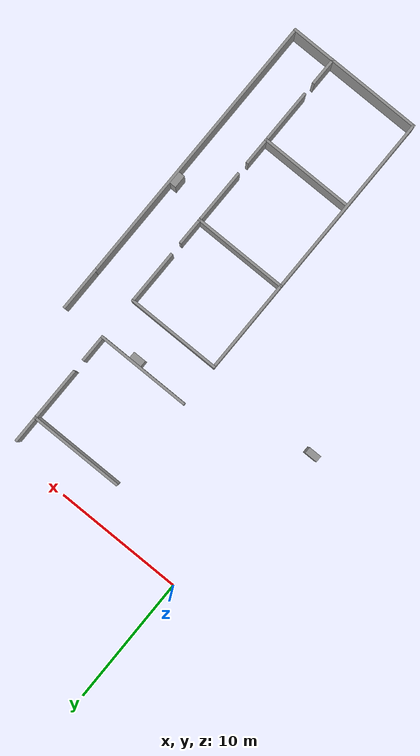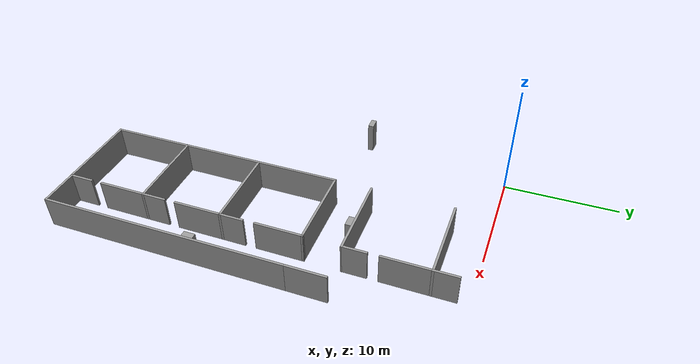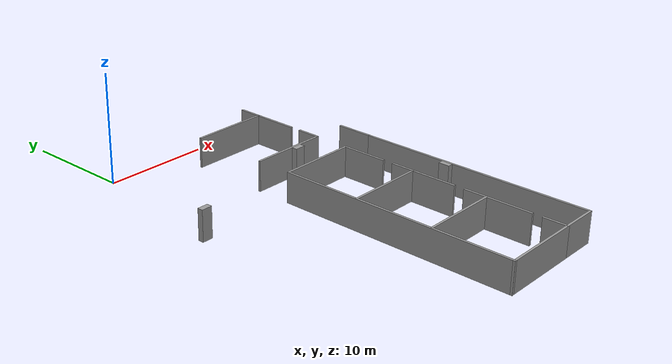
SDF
<sdf version="1.6">
 <world name="default">
  <model name="grey_wall_0_clone_0_0_clone">
   <link name="link">
    <pose>-0.251263 -0.001927 1.4 0 -0 0</pose>
    <inertial>
     <mass>1</mass>
     <inertia><ixx>1</ixx><ixy>0</ixy><ixz>0</ixz><iyy>1</iyy><iyz>0</iyz><izz>1</izz></inertia>
    </inertial>
    <visual name="visual">
     <cast_shadows>0</cast_shadows>
     <geometry><box><size>7.4 0.2 2.8</size></box></geometry>
     <material>
      <script>
       <uri>model://grey_wall/materials/scripts</uri>
       <uri>model://grey_wall/materials/textures</uri>
       <name>vrc/grey_wall</name>
      </script>
      <ambient>1 1 1 1</ambient>
      <diffuse>1 1 1 1</diffuse>
      <specular>0 0 0 1</specular>
      <emissive>0 0 0 1</emissive>
      <shader type="vertex"><normal_map>__default__</normal_map></shader>
     </material>
    </visual>
    <collision name="collision">
     <geometry><box><size>7.4 0.2 2.8</size></box></geometry>
     <surface>
      <friction>
       <ode><mu>1</mu><mu2>1</mu2><fdir1>0 0 0</fdir1><slip1>0</slip1><slip2>0</slip2></ode>
       <torsional>
        <coefficient>1</coefficient>
        <patch_radius>0</patch_radius>
        <surface_radius>0</surface_radius>
        <use_patch_radius>1</use_patch_radius>
        <ode><slip>0</slip></ode>
       </torsional>
      </friction>
      <bounce><restitution_coefficient>0</restitution_coefficient><threshold>1e+06</threshold></bounce>
      <contact>
       <collide_without_contact>0</collide_without_contact>
       <collide_without_contact_bitmask>1</collide_without_contact_bitmask>
       <collide_bitmask>1</collide_bitmask>
       <ode>
        <soft_cfm>0</soft_cfm>
        <soft_erp>0.2</soft_erp>
        <kp>1e+13</kp>
        <kd>1</kd>
        <max_vel>0.01</max_vel>
        <min_depth>0</min_depth>
       </ode>
       <bullet>
        <split_impulse>1</split_impulse>
        <split_impulse_penetration_threshold>-0.01</split_impulse_penetration_threshold>
        <soft_cfm>0</soft_cfm>
        <soft_erp>0.2</soft_erp>
        <kp>1e+13</kp>
        <kd>1</kd>
       </bullet>
      </contact>
     </surface>
    </collision>
   </link>
   <static>1</static>
   <pose>11.3835 -3.1139 0 0 -0 0</pose>
  </model>
  <model name="grey_wall_0_clone_0_0_0">
   <link name="link">
    <pose>-0.251263 -0.001927 1.4 0 -0 0</pose>
    <inertial>
     <mass>1</mass>
     <inertia><ixx>1</ixx><ixy>0</ixy><ixz>0</ixz><iyy>1</iyy><iyz>0</iyz><izz>1</izz></inertia>
    </inertial>
    <visual name="visual">
     <cast_shadows>0</cast_shadows>
     <geometry><box><size>7.4 0.2 2.8</size></box></geometry>
     <material>
      <script>
       <uri>model://grey_wall/materials/scripts</uri>
       <uri>model://grey_wall/materials/textures</uri>
       <name>vrc/grey_wall</name>
      </script>
      <ambient>1 1 1 1</ambient>
      <diffuse>1 1 1 1</diffuse>
      <specular>0 0 0 1</specular>
      <emissive>0 0 0 1</emissive>
      <shader type="vertex"><normal_map>__default__</normal_map></shader>
     </material>
    </visual>
    <collision name="collision">
     <geometry><box><size>7.4 0.2 2.8</size></box></geometry>
     <surface>
      <friction>
       <ode><mu>1</mu><mu2>1</mu2><fdir1>0 0 0</fdir1><slip1>0</slip1><slip2>0</slip2></ode>
       <torsional>
        <coefficient>1</coefficient>
        <patch_radius>0</patch_radius>
        <surface_radius>0</surface_radius>
        <use_patch_radius>1</use_patch_radius>
        <ode><slip>0</slip></ode>
       </torsional>
      </friction>
      <bounce><restitution_coefficient>0</restitution_coefficient><threshold>1e+06</threshold></bounce>
      <contact>
       <collide_without_contact>0</collide_without_contact>
       <collide_without_contact_bitmask>1</collide_without_contact_bitmask>
       <collide_bitmask>1</collide_bitmask>
       <ode>
        <soft_cfm>0</soft_cfm>
        <soft_erp>0.2</soft_erp>
        <kp>1e+13</kp>
        <kd>1</kd>
        <max_vel>0.01</max_vel>
        <min_depth>0</min_depth>
       </ode>
       <bullet>
        <split_impulse>1</split_impulse>
        <split_impulse_penetration_threshold>-0.01</split_impulse_penetration_threshold>
        <soft_cfm>0</soft_cfm>
        <soft_erp>0.2</soft_erp>
        <kp>1e+13</kp>
        <kd>1</kd>
       </bullet>
      </contact>
     </surface>
    </collision>
   </link>
   <static>1</static>
   <pose>11.347 -10.3243 0 0 -0 0</pose>
  </model>
  <model name="g2_clone_0_0_clone_clone_clone_clone_clone">
   <link name="link">
    <pose>0 0 1.4 0 -0 0</pose>
    <inertial>
     <mass>1</mass>
     <inertia><ixx>1</ixx><ixy>0</ixy><ixz>0</ixz><iyy>1</iyy><iyz>0</iyz><izz>1</izz></inertia>
    </inertial>
    <visual name="visual">
     <cast_shadows>0</cast_shadows>
     <geometry><box><size>21.8 0.2 2.8</size></box></geometry>
     <material>
      <script>
       <uri>model://grey_wall/materials/scripts</uri>
       <uri>model://grey_wall/materials/textures</uri>
       <name>vrc/grey_wall</name>
      </script>
      <ambient>1 1 1 1</ambient>
      <diffuse>1 1 1 1</diffuse>
      <specular>0 0 0 1</specular>
      <emissive>0 0 0 1</emissive>
      <shader type="vertex"><normal_map>__default__</normal_map></shader>
     </material>
    </visual>
    <collision name="collision">
     <geometry><box><size>21.8 0.2 2.8</size></box></geometry>
     <surface>
      <friction>
       <ode><mu>1</mu><mu2>1</mu2><fdir1>0 0 0</fdir1><slip1>0</slip1><slip2>0</slip2></ode>
       <torsional>
        <coefficient>1</coefficient>
        <patch_radius>0</patch_radius>
        <surface_radius>0</surface_radius>
        <use_patch_radius>1</use_patch_radius>
        <ode><slip>0</slip></ode>
       </torsional>
      </friction>
      <bounce><restitution_coefficient>0</restitution_coefficient><threshold>1e+06</threshold></bounce>
      <contact>
       <collide_without_contact>0</collide_without_contact>
       <collide_without_contact_bitmask>1</collide_without_contact_bitmask>
       <collide_bitmask>1</collide_bitmask>
       <ode>
        <soft_cfm>0</soft_cfm>
        <soft_erp>0.2</soft_erp>
        <kp>1e+13</kp>
        <kd>1</kd>
        <max_vel>0.01</max_vel>
        <min_depth>0</min_depth>
       </ode>
       <bullet>
        <split_impulse>1</split_impulse>
        <split_impulse_penetration_threshold>-0.01</split_impulse_penetration_threshold>
        <soft_cfm>0</soft_cfm>
        <soft_erp>0.2</soft_erp>
        <kp>1e+13</kp>
        <kd>1</kd>
       </bullet>
      </contact>
     </surface>
    </collision>
   </link>
   <static>1</static>
   <pose>17.9374 -24.4027 0 0 0 -1.57584</pose>
  </model>
  <model name="g3_clone_clone_0_clone_0_0_0_0_0_0_clone_clone_clone_0_clone_0_clone_1_0_clone_1">
   <link name="link">
    <pose>0.277892 -0.062462 1.4 0 -0 0</pose>
    <inertial>
     <mass>1</mass>
     <inertia><ixx>1</ixx><ixy>0</ixy><ixz>0</ixz><iyy>1</iyy><iyz>0</iyz><izz>1</izz></inertia>
    </inertial>
    <visual name="visual">
     <cast_shadows>0</cast_shadows>
     <geometry><box><size>2.2 0.2 2.8</size></box></geometry>
     <material>
      <script>
       <uri>model://grey_wall/materials/scripts</uri>
       <uri>model://grey_wall/materials/textures</uri>
       <name>vrc/grey_wall</name>
      </script>
      <ambient>1 1 1 1</ambient>
      <diffuse>1 1 1 1</diffuse>
      <specular>0 0 0 1</specular>
      <emissive>0 0 0 1</emissive>
      <shader type="vertex"><normal_map>__default__</normal_map></shader>
     </material>
    </visual>
    <collision name="collision">
     <geometry><box><size>2.2 0.2 2.8</size></box></geometry>
     <surface>
      <friction>
       <ode><mu>1</mu><mu2>1</mu2><fdir1>0 0 0</fdir1><slip1>0</slip1><slip2>0</slip2></ode>
       <torsional>
        <coefficient>1</coefficient>
        <patch_radius>0</patch_radius>
        <surface_radius>0</surface_radius>
        <use_patch_radius>1</use_patch_radius>
        <ode><slip>0</slip></ode>
       </torsional>
      </friction>
      <bounce><restitution_coefficient>0</restitution_coefficient><threshold>1e+06</threshold></bounce>
      <contact>
       <collide_without_contact>0</collide_without_contact>
       <collide_without_contact_bitmask>1</collide_without_contact_bitmask>
       <collide_bitmask>1</collide_bitmask>
       <ode>
        <soft_cfm>0</soft_cfm>
        <soft_erp>0.2</soft_erp>
        <kp>1e+13</kp>
        <kd>1</kd>
        <max_vel>0.01</max_vel>
        <min_depth>0</min_depth>
       </ode>
       <bullet>
        <split_impulse>1</split_impulse>
        <split_impulse_penetration_threshold>-0.01</split_impulse_penetration_threshold>
        <soft_cfm>0</soft_cfm>
        <soft_erp>0.2</soft_erp>
        <kp>1e+13</kp>
        <kd>1</kd>
       </bullet>
      </contact>
     </surface>
    </collision>
   </link>
   <static>1</static>
   <pose>14.7998 -1.84031 0 0 0 -1.57614</pose>
  </model>
  <model name="g3_clone_clone_0_0_0_0_0_clone_0_clone_0_clone_2_clone_0_clone_0_clone_0_clone_clone">
   <link name="link">
    <pose>0.7232 0.251992 1.4 0 -0 0</pose>
    <inertial>
     <mass>1</mass>
     <inertia><ixx>1</ixx><ixy>0</ixy><ixz>0</ixz><iyy>1</iyy><iyz>0</iyz><izz>1</izz></inertia>
    </inertial>
    <visual name="visual">
     <cast_shadows>0</cast_shadows>
     <geometry><box><size>4.3 0.2 2.8</size></box></geometry>
     <material>
      <script>
       <uri>model://grey_wall/materials/scripts</uri>
       <uri>model://grey_wall/materials/textures</uri>
       <name>vrc/grey_wall</name>
      </script>
      <ambient>1 1 1 1</ambient>
      <diffuse>1 1 1 1</diffuse>
      <specular>0 0 0 1</specular>
      <emissive>0 0 0 1</emissive>
      <shader type="vertex"><normal_map>__default__</normal_map></shader>
     </material>
    </visual>
    <collision name="collision">
     <geometry><box><size>4.3 0.2 2.8</size></box></geometry>
     <surface>
      <friction>
       <ode><mu>1</mu><mu2>1</mu2><fdir1>0 0 0</fdir1><slip1>0</slip1><slip2>0</slip2></ode>
       <torsional>
        <coefficient>1</coefficient>
        <patch_radius>0</patch_radius>
        <surface_radius>0</surface_radius>
        <use_patch_radius>1</use_patch_radius>
        <ode><slip>0</slip></ode>
       </torsional>
      </friction>
      <bounce><restitution_coefficient>0</restitution_coefficient><threshold>1e+06</threshold></bounce>
      <contact>
       <collide_without_contact>0</collide_without_contact>
       <collide_without_contact_bitmask>1</collide_without_contact_bitmask>
       <collide_bitmask>1</collide_bitmask>
       <ode>
        <soft_cfm>0</soft_cfm>
        <soft_erp>0.2</soft_erp>
        <kp>1e+13</kp>
        <kd>1</kd>
        <max_vel>0.01</max_vel>
        <min_depth>0</min_depth>
       </ode>
       <bullet>
        <split_impulse>1</split_impulse>
        <split_impulse_penetration_threshold>-0.01</split_impulse_penetration_threshold>
        <soft_cfm>0</soft_cfm>
        <soft_erp>0.2</soft_erp>
        <kp>1e+13</kp>
        <kd>1</kd>
       </bullet>
      </contact>
     </surface>
    </collision>
   </link>
   <static>1</static>
   <pose>14.4689 -4.43983 0 0 0 -1.57728</pose>
  </model>
  <model name="g3_clone_clone_0_clone_0_0_0_0_0_0_clone_clone_clone_0_clone_0_clone_1_0_clone_1_clone">
   <link name="link">
    <pose>0.277892 -0.062462 1.4 0 -0 0</pose>
    <inertial>
     <mass>1</mass>
     <inertia><ixx>1</ixx><ixy>0</ixy><ixz>0</ixz><iyy>1</iyy><iyz>0</iyz><izz>1</izz></inertia>
    </inertial>
    <visual name="visual">
     <cast_shadows>0</cast_shadows>
     <geometry><box><size>2.2 0.2 2.8</size></box></geometry>
     <material>
      <script>
       <uri>model://grey_wall/materials/scripts</uri>
       <uri>model://grey_wall/materials/textures</uri>
       <name>vrc/grey_wall</name>
      </script>
      <ambient>1 1 1 1</ambient>
      <diffuse>1 1 1 1</diffuse>
      <specular>0 0 0 1</specular>
      <emissive>0 0 0 1</emissive>
      <shader type="vertex"><normal_map>__default__</normal_map></shader>
     </material>
    </visual>
    <collision name="collision">
     <geometry><box><size>2.2 0.2 2.8</size></box></geometry>
     <surface>
      <friction>
       <ode><mu>1</mu><mu2>1</mu2><fdir1>0 0 0</fdir1><slip1>0</slip1><slip2>0</slip2></ode>
       <torsional>
        <coefficient>1</coefficient>
        <patch_radius>0</patch_radius>
        <surface_radius>0</surface_radius>
        <use_patch_radius>1</use_patch_radius>
        <ode><slip>0</slip></ode>
       </torsional>
      </friction>
      <bounce><restitution_coefficient>0</restitution_coefficient><threshold>1e+06</threshold></bounce>
      <contact>
       <collide_without_contact>0</collide_without_contact>
       <collide_without_contact_bitmask>1</collide_without_contact_bitmask>
       <collide_bitmask>1</collide_bitmask>
       <ode>
        <soft_cfm>0</soft_cfm>
        <soft_erp>0.2</soft_erp>
        <kp>1e+13</kp>
        <kd>1</kd>
        <max_vel>0.01</max_vel>
        <min_depth>0</min_depth>
       </ode>
       <bullet>
        <split_impulse>1</split_impulse>
        <split_impulse_penetration_threshold>-0.01</split_impulse_penetration_threshold>
        <soft_cfm>0</soft_cfm>
        <soft_erp>0.2</soft_erp>
        <kp>1e+13</kp>
        <kd>1</kd>
       </bullet>
      </contact>
     </surface>
    </collision>
   </link>
   <static>1</static>
   <pose>14.765 -9.04614 0 0 0 -1.57614</pose>
  </model>
  <model name="g2_clone_0_0_0_clone_0">
   <link name="link">
    <pose>0 0 1.4 0 -0 0</pose>
    <inertial>
     <mass>1</mass>
     <inertia><ixx>1</ixx><ixy>0</ixy><ixz>0</ixz><iyy>1</iyy><iyz>0</iyz><izz>1</izz></inertia>
    </inertial>
    <visual name="visual">
     <cast_shadows>0</cast_shadows>
     <geometry><box><size>21.8 0.2 2.8</size></box></geometry>
     <material>
      <script>
       <uri>model://grey_wall/materials/scripts</uri>
       <uri>model://grey_wall/materials/textures</uri>
       <name>vrc/grey_wall</name>
      </script>
      <ambient>1 1 1 1</ambient>
      <diffuse>1 1 1 1</diffuse>
      <specular>0 0 0 1</specular>
      <emissive>0 0 0 1</emissive>
      <shader type="vertex"><normal_map>__default__</normal_map></shader>
     </material>
    </visual>
    <collision name="collision">
     <geometry><box><size>21.8 0.2 2.8</size></box></geometry>
     <surface>
      <friction>
       <ode><mu>1</mu><mu2>1</mu2><fdir1>0 0 0</fdir1><slip1>0</slip1><slip2>0</slip2></ode>
       <torsional>
        <coefficient>1</coefficient>
        <patch_radius>0</patch_radius>
        <surface_radius>0</surface_radius>
        <use_patch_radius>1</use_patch_radius>
        <ode><slip>0</slip></ode>
       </torsional>
      </friction>
      <bounce><restitution_coefficient>0</restitution_coefficient><threshold>1e+06</threshold></bounce>
      <contact>
       <collide_without_contact>0</collide_without_contact>
       <collide_without_contact_bitmask>1</collide_without_contact_bitmask>
       <collide_bitmask>1</collide_bitmask>
       <ode>
        <soft_cfm>0</soft_cfm>
        <soft_erp>0.2</soft_erp>
        <kp>1e+13</kp>
        <kd>1</kd>
        <max_vel>0.01</max_vel>
        <min_depth>0</min_depth>
       </ode>
       <bullet>
        <split_impulse>1</split_impulse>
        <split_impulse_penetration_threshold>-0.01</split_impulse_penetration_threshold>
        <soft_cfm>0</soft_cfm>
        <soft_erp>0.2</soft_erp>
        <kp>1e+13</kp>
        <kd>1</kd>
       </bullet>
      </contact>
     </surface>
    </collision>
   </link>
   <static>1</static>
   <pose>7.41233 -24.4149 0 0 0 -1.57584</pose>
  </model>
  <model name="grey_wall_0_clone_0_0_clone_clone_0_0">
   <link name="link">
    <pose>-2.47487 -23.0664 1.4 0 -0 0</pose>
    <inertial>
     <mass>1</mass>
     <inertia><ixx>1</ixx><ixy>0</ixy><ixz>0</ixz><iyy>1</iyy><iyz>0</iyz><izz>1</izz></inertia>
    </inertial>
    <visual name="visual">
     <cast_shadows>0</cast_shadows>
     <geometry><box><size>3.5 0.2 2.8</size></box></geometry>
     <material>
      <script>
       <uri>model://grey_wall/materials/scripts</uri>
       <uri>model://grey_wall/materials/textures</uri>
       <name>vrc/grey_wall</name>
      </script>
      <ambient>1 1 1 1</ambient>
      <diffuse>1 1 1 1</diffuse>
      <specular>0 0 0 1</specular>
      <emissive>0 0 0 1</emissive>
      <shader type="vertex"><normal_map>__default__</normal_map></shader>
     </material>
    </visual>
    <collision name="collision">
     <geometry><box><size>3.5 0.2 2.8</size></box></geometry>
     <surface>
      <friction>
       <ode><mu>1</mu><mu2>1</mu2><fdir1>0 0 0</fdir1><slip1>0</slip1><slip2>0</slip2></ode>
       <torsional>
        <coefficient>1</coefficient>
        <patch_radius>0</patch_radius>
        <surface_radius>0</surface_radius>
        <use_patch_radius>1</use_patch_radius>
        <ode><slip>0</slip></ode>
       </torsional>
      </friction>
      <bounce><restitution_coefficient>0</restitution_coefficient><threshold>1e+06</threshold></bounce>
      <contact>
       <collide_without_contact>0</collide_without_contact>
       <collide_without_contact_bitmask>1</collide_without_contact_bitmask>
       <collide_bitmask>1</collide_bitmask>
       <ode>
        <soft_cfm>0</soft_cfm>
        <soft_erp>0.2</soft_erp>
        <kp>1e+13</kp>
        <kd>1</kd>
        <max_vel>0.01</max_vel>
        <min_depth>0</min_depth>
       </ode>
       <bullet>
        <split_impulse>1</split_impulse>
        <split_impulse_penetration_threshold>-0.01</split_impulse_penetration_threshold>
        <soft_cfm>0</soft_cfm>
        <soft_erp>0.2</soft_erp>
        <kp>1e+13</kp>
        <kd>1</kd>
       </bullet>
      </contact>
     </surface>
    </collision>
   </link>
   <static>1</static>
   <pose>18.7007 -12.1369 0 0 -0 0</pose>
  </model>
  <model name="g3_clone_clone_0_clone_0_0_0_0_0_0_clone_clone_clone_0_clone_0_clone_1_0_clone_1_clone_clone_0">
   <link name="link">
    <pose>0.277892 -0.022853 1.4 0 -0 0</pose>
    <inertial>
     <mass>1</mass>
     <inertia><ixx>1</ixx><ixy>0</ixy><ixz>0</ixz><iyy>1</iyy><iyz>0</iyz><izz>1</izz></inertia>
    </inertial>
    <visual name="visual">
     <cast_shadows>0</cast_shadows>
     <geometry><box><size>3.5 0.2 2.8</size></box></geometry>
     <material>
      <script>
       <uri>model://grey_wall/materials/scripts</uri>
       <uri>model://grey_wall/materials/textures</uri>
       <name>vrc/grey_wall</name>
      </script>
      <ambient>1 1 1 1</ambient>
      <diffuse>1 1 1 1</diffuse>
      <specular>0 0 0 1</specular>
      <emissive>0 0 0 1</emissive>
      <shader type="vertex"><normal_map>__default__</normal_map></shader>
     </material>
    </visual>
    <collision name="collision">
     <geometry><box><size>3.5 0.2 2.8</size></box></geometry>
     <surface>
      <friction>
       <ode><mu>1</mu><mu2>1</mu2><fdir1>0 0 0</fdir1><slip1>0</slip1><slip2>0</slip2></ode>
       <torsional>
        <coefficient>1</coefficient>
        <patch_radius>0</patch_radius>
        <surface_radius>0</surface_radius>
        <use_patch_radius>1</use_patch_radius>
        <ode><slip>0</slip></ode>
       </torsional>
      </friction>
      <bounce><restitution_coefficient>0</restitution_coefficient><threshold>1e+06</threshold></bounce>
      <contact>
       <collide_without_contact>0</collide_without_contact>
       <collide_without_contact_bitmask>1</collide_without_contact_bitmask>
       <collide_bitmask>1</collide_bitmask>
       <ode>
        <soft_cfm>0</soft_cfm>
        <soft_erp>0.2</soft_erp>
        <kp>1e+13</kp>
        <kd>1</kd>
        <max_vel>0.01</max_vel>
        <min_depth>0</min_depth>
       </ode>
       <bullet>
        <split_impulse>1</split_impulse>
        <split_impulse_penetration_threshold>-0.01</split_impulse_penetration_threshold>
        <soft_cfm>0</soft_cfm>
        <soft_erp>0.2</soft_erp>
        <kp>1e+13</kp>
        <kd>1</kd>
       </bullet>
      </contact>
     </surface>
    </collision>
   </link>
   <static>1</static>
   <pose>18.0265 -11.6602 0 0 0 -1.57614</pose>
  </model>
  <model name="grey_wall_0_clone_0_0_0_clone">
   <link name="link">
    <pose>-0.251263 -0.001927 1.4 0 -0 0</pose>
    <inertial>
     <mass>1</mass>
     <inertia><ixx>1</ixx><ixy>0</ixy><ixz>0</ixz><iyy>1</iyy><iyz>0</iyz><izz>1</izz></inertia>
    </inertial>
    <visual name="visual">
     <cast_shadows>0</cast_shadows>
     <geometry><box><size>7.4 0.2 2.8</size></box></geometry>
     <material>
      <script>
       <uri>model://grey_wall/materials/scripts</uri>
       <uri>model://grey_wall/materials/textures</uri>
       <name>vrc/grey_wall</name>
      </script>
      <ambient>1 1 1 1</ambient>
      <diffuse>1 1 1 1</diffuse>
      <specular>0 0 0 1</specular>
      <emissive>0 0 0 1</emissive>
      <shader type="vertex"><normal_map>__default__</normal_map></shader>
     </material>
    </visual>
    <collision name="collision">
     <geometry><box><size>7.4 0.2 2.8</size></box></geometry>
     <surface>
      <friction>
       <ode><mu>1</mu><mu2>1</mu2><fdir1>0 0 0</fdir1><slip1>0</slip1><slip2>0</slip2></ode>
       <torsional>
        <coefficient>1</coefficient>
        <patch_radius>0</patch_radius>
        <surface_radius>0</surface_radius>
        <use_patch_radius>1</use_patch_radius>
        <ode><slip>0</slip></ode>
       </torsional>
      </friction>
      <bounce><restitution_coefficient>0</restitution_coefficient><threshold>1e+06</threshold></bounce>
      <contact>
       <collide_without_contact>0</collide_without_contact>
       <collide_without_contact_bitmask>1</collide_without_contact_bitmask>
       <collide_bitmask>1</collide_bitmask>
       <ode>
        <soft_cfm>0</soft_cfm>
        <soft_erp>0.2</soft_erp>
        <kp>1e+13</kp>
        <kd>1</kd>
        <max_vel>0.01</max_vel>
        <min_depth>0</min_depth>
       </ode>
       <bullet>
        <split_impulse>1</split_impulse>
        <split_impulse_penetration_threshold>-0.01</split_impulse_penetration_threshold>
        <soft_cfm>0</soft_cfm>
        <soft_erp>0.2</soft_erp>
        <kp>1e+13</kp>
        <kd>1</kd>
       </bullet>
      </contact>
     </surface>
    </collision>
   </link>
   <static>1</static>
   <pose>11.3191 -13.6071 0 0 -0 0</pose>
  </model>
  <model name="grey_wall_0_clone_0_0_0_clone_clone">
   <link name="link">
    <pose>-0.251263 -0.001927 1.4 0 -0 0</pose>
    <inertial>
     <mass>1</mass>
     <inertia><ixx>1</ixx><ixy>0</ixy><ixz>0</ixz><iyy>1</iyy><iyz>0</iyz><izz>1</izz></inertia>
    </inertial>
    <visual name="visual">
     <cast_shadows>0</cast_shadows>
     <geometry><box><size>7.4 0.2 2.8</size></box></geometry>
     <material>
      <script>
       <uri>model://grey_wall/materials/scripts</uri>
       <uri>model://grey_wall/materials/textures</uri>
       <name>vrc/grey_wall</name>
      </script>
      <ambient>1 1 1 1</ambient>
      <diffuse>1 1 1 1</diffuse>
      <specular>0 0 0 1</specular>
      <emissive>0 0 0 1</emissive>
      <shader type="vertex"><normal_map>__default__</normal_map></shader>
     </material>
    </visual>
    <collision name="collision">
     <geometry><box><size>7.4 0.2 2.8</size></box></geometry>
     <surface>
      <friction>
       <ode><mu>1</mu><mu2>1</mu2><fdir1>0 0 0</fdir1><slip1>0</slip1><slip2>0</slip2></ode>
       <torsional>
        <coefficient>1</coefficient>
        <patch_radius>0</patch_radius>
        <surface_radius>0</surface_radius>
        <use_patch_radius>1</use_patch_radius>
        <ode><slip>0</slip></ode>
       </torsional>
      </friction>
      <bounce><restitution_coefficient>0</restitution_coefficient><threshold>1e+06</threshold></bounce>
      <contact>
       <collide_without_contact>0</collide_without_contact>
       <collide_without_contact_bitmask>1</collide_without_contact_bitmask>
       <collide_bitmask>1</collide_bitmask>
       <ode>
        <soft_cfm>0</soft_cfm>
        <soft_erp>0.2</soft_erp>
        <kp>1e+13</kp>
        <kd>1</kd>
        <max_vel>0.01</max_vel>
        <min_depth>0</min_depth>
       </ode>
       <bullet>
        <split_impulse>1</split_impulse>
        <split_impulse_penetration_threshold>-0.01</split_impulse_penetration_threshold>
        <soft_cfm>0</soft_cfm>
        <soft_erp>0.2</soft_erp>
        <kp>1e+13</kp>
        <kd>1</kd>
       </bullet>
      </contact>
     </surface>
    </collision>
   </link>
   <static>1</static>
   <pose>11.294 -20.8222 0 0 -0 0</pose>
  </model>
  <model name="grey_wall_0_clone_0_0_0_clone_clone_0">
   <link name="link">
    <pose>-0.251263 -0.001927 1.4 0 -0 0</pose>
    <inertial>
     <mass>1</mass>
     <inertia><ixx>1</ixx><ixy>0</ixy><ixz>0</ixz><iyy>1</iyy><iyz>0</iyz><izz>1</izz></inertia>
    </inertial>
    <visual name="visual">
     <cast_shadows>0</cast_shadows>
     <geometry><box><size>7.4 0.2 2.8</size></box></geometry>
     <material>
      <script>
       <uri>model://grey_wall/materials/scripts</uri>
       <uri>model://grey_wall/materials/textures</uri>
       <name>vrc/grey_wall</name>
      </script>
      <ambient>1 1 1 1</ambient>
      <diffuse>1 1 1 1</diffuse>
      <specular>0 0 0 1</specular>
      <emissive>0 0 0 1</emissive>
      <shader type="vertex"><normal_map>__default__</normal_map></shader>
     </material>
    </visual>
    <collision name="collision">
     <geometry><box><size>7.4 0.2 2.8</size></box></geometry>
     <surface>
      <friction>
       <ode><mu>1</mu><mu2>1</mu2><fdir1>0 0 0</fdir1><slip1>0</slip1><slip2>0</slip2></ode>
       <torsional>
        <coefficient>1</coefficient>
        <patch_radius>0</patch_radius>
        <surface_radius>0</surface_radius>
        <use_patch_radius>1</use_patch_radius>
        <ode><slip>0</slip></ode>
       </torsional>
      </friction>
      <bounce><restitution_coefficient>0</restitution_coefficient><threshold>1e+06</threshold></bounce>
      <contact>
       <collide_without_contact>0</collide_without_contact>
       <collide_without_contact_bitmask>1</collide_without_contact_bitmask>
       <collide_bitmask>1</collide_bitmask>
       <ode>
        <soft_cfm>0</soft_cfm>
        <soft_erp>0.2</soft_erp>
        <kp>1e+13</kp>
        <kd>1</kd>
        <max_vel>0.01</max_vel>
        <min_depth>0</min_depth>
       </ode>
       <bullet>
        <split_impulse>1</split_impulse>
        <split_impulse_penetration_threshold>-0.01</split_impulse_penetration_threshold>
        <soft_cfm>0</soft_cfm>
        <soft_erp>0.2</soft_erp>
        <kp>1e+13</kp>
        <kd>1</kd>
       </bullet>
      </contact>
     </surface>
    </collision>
   </link>
   <static>1</static>
   <pose>11.2516 -28.0234 0 0 -0 0</pose>
  </model>
  <model name="g3_clone_clone_0_0_0_0_0_clone_0_clone_0_clone_2_clone_0_clone_0_clone_0_clone_clone_clone">
   <link name="link">
    <pose>0.7232 0.251992 1.4 0 -0 0</pose>
    <inertial>
     <mass>1</mass>
     <inertia><ixx>1</ixx><ixy>0</ixy><ixz>0</ixz><iyy>1</iyy><iyz>0</iyz><izz>1</izz></inertia>
    </inertial>
    <visual name="visual">
     <cast_shadows>0</cast_shadows>
     <geometry><box><size>4.3 0.2 2.8</size></box></geometry>
     <material>
      <script>
       <uri>model://grey_wall/materials/scripts</uri>
       <uri>model://grey_wall/materials/textures</uri>
       <name>vrc/grey_wall</name>
      </script>
      <ambient>1 1 1 1</ambient>
      <diffuse>1 1 1 1</diffuse>
      <specular>0 0 0 1</specular>
      <emissive>0 0 0 1</emissive>
      <shader type="vertex"><normal_map>__default__</normal_map></shader>
     </material>
    </visual>
    <collision name="collision">
     <geometry><box><size>4.3 0.2 2.8</size></box></geometry>
     <surface>
      <friction>
       <ode><mu>1</mu><mu2>1</mu2><fdir1>0 0 0</fdir1><slip1>0</slip1><slip2>0</slip2></ode>
       <torsional>
        <coefficient>1</coefficient>
        <patch_radius>0</patch_radius>
        <surface_radius>0</surface_radius>
        <use_patch_radius>1</use_patch_radius>
        <ode><slip>0</slip></ode>
       </torsional>
      </friction>
      <bounce><restitution_coefficient>0</restitution_coefficient><threshold>1e+06</threshold></bounce>
      <contact>
       <collide_without_contact>0</collide_without_contact>
       <collide_without_contact_bitmask>1</collide_without_contact_bitmask>
       <collide_bitmask>1</collide_bitmask>
       <ode>
        <soft_cfm>0</soft_cfm>
        <soft_erp>0.2</soft_erp>
        <kp>1e+13</kp>
        <kd>1</kd>
        <max_vel>0.01</max_vel>
        <min_depth>0</min_depth>
       </ode>
       <bullet>
        <split_impulse>1</split_impulse>
        <split_impulse_penetration_threshold>-0.01</split_impulse_penetration_threshold>
        <soft_cfm>0</soft_cfm>
        <soft_erp>0.2</soft_erp>
        <kp>1e+13</kp>
        <kd>1</kd>
       </bullet>
      </contact>
     </surface>
    </collision>
   </link>
   <static>1</static>
   <pose>14.4068 -14.9327 0 0 0 -1.57728</pose>
  </model>
  <model name="g3_clone_clone_0_clone_0_0_0_0_0_0_clone_clone_clone_0_clone_0_clone_1_0_clone_1_clone_clone_1">
   <link name="link">
    <pose>0.277892 -0.062462 1.4 0 -0 0</pose>
    <inertial>
     <mass>1</mass>
     <inertia><ixx>1</ixx><ixy>0</ixy><ixz>0</ixz><iyy>1</iyy><iyz>0</iyz><izz>1</izz></inertia>
    </inertial>
    <visual name="visual">
     <cast_shadows>0</cast_shadows>
     <geometry><box><size>2.2 0.2 2.8</size></box></geometry>
     <material>
      <script>
       <uri>model://grey_wall/materials/scripts</uri>
       <uri>model://grey_wall/materials/textures</uri>
       <name>vrc/grey_wall</name>
      </script>
      <ambient>1 1 1 1</ambient>
      <diffuse>1 1 1 1</diffuse>
      <specular>0 0 0 1</specular>
      <emissive>0 0 0 1</emissive>
      <shader type="vertex"><normal_map>__default__</normal_map></shader>
     </material>
    </visual>
    <collision name="collision">
     <geometry><box><size>2.2 0.2 2.8</size></box></geometry>
     <surface>
      <friction>
       <ode><mu>1</mu><mu2>1</mu2><fdir1>0 0 0</fdir1><slip1>0</slip1><slip2>0</slip2></ode>
       <torsional>
        <coefficient>1</coefficient>
        <patch_radius>0</patch_radius>
        <surface_radius>0</surface_radius>
        <use_patch_radius>1</use_patch_radius>
        <ode><slip>0</slip></ode>
       </torsional>
      </friction>
      <bounce><restitution_coefficient>0</restitution_coefficient><threshold>1e+06</threshold></bounce>
      <contact>
       <collide_without_contact>0</collide_without_contact>
       <collide_without_contact_bitmask>1</collide_without_contact_bitmask>
       <collide_bitmask>1</collide_bitmask>
       <ode>
        <soft_cfm>0</soft_cfm>
        <soft_erp>0.2</soft_erp>
        <kp>1e+13</kp>
        <kd>1</kd>
        <max_vel>0.01</max_vel>
        <min_depth>0</min_depth>
       </ode>
       <bullet>
        <split_impulse>1</split_impulse>
        <split_impulse_penetration_threshold>-0.01</split_impulse_penetration_threshold>
        <soft_cfm>0</soft_cfm>
        <soft_erp>0.2</soft_erp>
        <kp>1e+13</kp>
        <kd>1</kd>
       </bullet>
      </contact>
     </surface>
    </collision>
   </link>
   <static>1</static>
   <pose>14.7109 -19.5453 0 0 0 -1.57614</pose>
  </model>
  <model name="g3_clone_clone_0_0_0_0_0_clone_0_clone_0_clone_2_clone_0_clone_0_clone_0_clone_clone_clone_0">
   <link name="link">
    <pose>0.7232 0.251992 1.4 0 -0 0</pose>
    <inertial>
     <mass>1</mass>
     <inertia><ixx>1</ixx><ixy>0</ixy><ixz>0</ixz><iyy>1</iyy><iyz>0</iyz><izz>1</izz></inertia>
    </inertial>
    <visual name="visual">
     <cast_shadows>0</cast_shadows>
     <geometry><box><size>4.3 0.2 2.8</size></box></geometry>
     <material>
      <script>
       <uri>model://grey_wall/materials/scripts</uri>
       <uri>model://grey_wall/materials/textures</uri>
       <name>vrc/grey_wall</name>
      </script>
      <ambient>1 1 1 1</ambient>
      <diffuse>1 1 1 1</diffuse>
      <specular>0 0 0 1</specular>
      <emissive>0 0 0 1</emissive>
      <shader type="vertex"><normal_map>__default__</normal_map></shader>
     </material>
    </visual>
    <collision name="collision">
     <geometry><box><size>4.3 0.2 2.8</size></box></geometry>
     <surface>
      <friction>
       <ode><mu>1</mu><mu2>1</mu2><fdir1>0 0 0</fdir1><slip1>0</slip1><slip2>0</slip2></ode>
       <torsional>
        <coefficient>1</coefficient>
        <patch_radius>0</patch_radius>
        <surface_radius>0</surface_radius>
        <use_patch_radius>1</use_patch_radius>
        <ode><slip>0</slip></ode>
       </torsional>
      </friction>
      <bounce><restitution_coefficient>0</restitution_coefficient><threshold>1e+06</threshold></bounce>
      <contact>
       <collide_without_contact>0</collide_without_contact>
       <collide_without_contact_bitmask>1</collide_without_contact_bitmask>
       <collide_bitmask>1</collide_bitmask>
       <ode>
        <soft_cfm>0</soft_cfm>
        <soft_erp>0.2</soft_erp>
        <kp>1e+13</kp>
        <kd>1</kd>
        <max_vel>0.01</max_vel>
        <min_depth>0</min_depth>
       </ode>
       <bullet>
        <split_impulse>1</split_impulse>
        <split_impulse_penetration_threshold>-0.01</split_impulse_penetration_threshold>
        <soft_cfm>0</soft_cfm>
        <soft_erp>0.2</soft_erp>
        <kp>1e+13</kp>
        <kd>1</kd>
       </bullet>
      </contact>
     </surface>
    </collision>
   </link>
   <static>1</static>
   <pose>14.3788 -22.1566 0 0 0 -1.57728</pose>
  </model>
  <model name="g3_clone_clone_0_clone_0_0_0_0_0_0_clone_clone_clone_0_clone_0_clone_1_0_clone_1_clone_clone_2">
   <link name="link">
    <pose>0.277892 -0.062462 1.4 0 -0 0</pose>
    <inertial>
     <mass>1</mass>
     <inertia><ixx>1</ixx><ixy>0</ixy><ixz>0</ixz><iyy>1</iyy><iyz>0</iyz><izz>1</izz></inertia>
    </inertial>
    <visual name="visual">
     <cast_shadows>0</cast_shadows>
     <geometry><box><size>2.2 0.2 2.8</size></box></geometry>
     <material>
      <script>
       <uri>model://grey_wall/materials/scripts</uri>
       <uri>model://grey_wall/materials/textures</uri>
       <name>vrc/grey_wall</name>
      </script>
      <ambient>1 1 1 1</ambient>
      <diffuse>1 1 1 1</diffuse>
      <specular>0 0 0 1</specular>
      <emissive>0 0 0 1</emissive>
      <shader type="vertex"><normal_map>__default__</normal_map></shader>
     </material>
    </visual>
    <collision name="collision">
     <geometry><box><size>2.2 0.2 2.8</size></box></geometry>
     <surface>
      <friction>
       <ode><mu>1</mu><mu2>1</mu2><fdir1>0 0 0</fdir1><slip1>0</slip1><slip2>0</slip2></ode>
       <torsional>
        <coefficient>1</coefficient>
        <patch_radius>0</patch_radius>
        <surface_radius>0</surface_radius>
        <use_patch_radius>1</use_patch_radius>
        <ode><slip>0</slip></ode>
       </torsional>
      </friction>
      <bounce><restitution_coefficient>0</restitution_coefficient><threshold>1e+06</threshold></bounce>
      <contact>
       <collide_without_contact>0</collide_without_contact>
       <collide_without_contact_bitmask>1</collide_without_contact_bitmask>
       <collide_bitmask>1</collide_bitmask>
       <ode>
        <soft_cfm>0</soft_cfm>
        <soft_erp>0.2</soft_erp>
        <kp>1e+13</kp>
        <kd>1</kd>
        <max_vel>0.01</max_vel>
        <min_depth>0</min_depth>
       </ode>
       <bullet>
        <split_impulse>1</split_impulse>
        <split_impulse_penetration_threshold>-0.01</split_impulse_penetration_threshold>
        <soft_cfm>0</soft_cfm>
        <soft_erp>0.2</soft_erp>
        <kp>1e+13</kp>
        <kd>1</kd>
       </bullet>
      </contact>
     </surface>
    </collision>
   </link>
   <static>1</static>
   <pose>14.6677 -26.7488 0 0 0 -1.57614</pose>
  </model>
  <model name="g3_clone_clone_0_0_0_0_0_clone_0_clone_0_clone_2_clone_0_clone_0_clone_0_clone_clone_clone_1">
   <link name="link">
    <pose>0.7232 0.251992 1.4 0 -0 0</pose>
    <inertial>
     <mass>1</mass>
     <inertia><ixx>1</ixx><ixy>0</ixy><ixz>0</ixz><iyy>1</iyy><iyz>0</iyz><izz>1</izz></inertia>
    </inertial>
    <visual name="visual">
     <cast_shadows>0</cast_shadows>
     <geometry><box><size>4.3 0.2 2.8</size></box></geometry>
     <material>
      <script>
       <uri>model://grey_wall/materials/scripts</uri>
       <uri>model://grey_wall/materials/textures</uri>
       <name>vrc/grey_wall</name>
      </script>
      <ambient>1 1 1 1</ambient>
      <diffuse>1 1 1 1</diffuse>
      <specular>0 0 0 1</specular>
      <emissive>0 0 0 1</emissive>
      <shader type="vertex"><normal_map>__default__</normal_map></shader>
     </material>
    </visual>
    <collision name="collision">
     <geometry><box><size>4.3 0.2 2.8</size></box></geometry>
     <surface>
      <friction>
       <ode><mu>1</mu><mu2>1</mu2><fdir1>0 0 0</fdir1><slip1>0</slip1><slip2>0</slip2></ode>
       <torsional>
        <coefficient>1</coefficient>
        <patch_radius>0</patch_radius>
        <surface_radius>0</surface_radius>
        <use_patch_radius>1</use_patch_radius>
        <ode><slip>0</slip></ode>
       </torsional>
      </friction>
      <bounce><restitution_coefficient>0</restitution_coefficient><threshold>1e+06</threshold></bounce>
      <contact>
       <collide_without_contact>0</collide_without_contact>
       <collide_without_contact_bitmask>1</collide_without_contact_bitmask>
       <collide_bitmask>1</collide_bitmask>
       <ode>
        <soft_cfm>0</soft_cfm>
        <soft_erp>0.2</soft_erp>
        <kp>1e+13</kp>
        <kd>1</kd>
        <max_vel>0.01</max_vel>
        <min_depth>0</min_depth>
       </ode>
       <bullet>
        <split_impulse>1</split_impulse>
        <split_impulse_penetration_threshold>-0.01</split_impulse_penetration_threshold>
        <soft_cfm>0</soft_cfm>
        <soft_erp>0.2</soft_erp>
        <kp>1e+13</kp>
        <kd>1</kd>
       </bullet>
      </contact>
     </surface>
    </collision>
   </link>
   <static>1</static>
   <pose>14.3388 -29.3479 0 0 0 -1.57728</pose>
  </model>
  <model name="g3_clone_clone_0_clone_0_0_0_0_0_0_clone_clone_clone_0_clone_0_clone_1_0_clone_1_clone_clone_3">
   <link name="link">
    <pose>0.277892 -0.062462 1.4 0 -0 0</pose>
    <inertial>
     <mass>1</mass>
     <inertia><ixx>1</ixx><ixy>0</ixy><ixz>0</ixz><iyy>1</iyy><iyz>0</iyz><izz>1</izz></inertia>
    </inertial>
    <visual name="visual">
     <cast_shadows>0</cast_shadows>
     <geometry><box><size>2.2 0.2 2.8</size></box></geometry>
     <material>
      <script>
       <uri>model://grey_wall/materials/scripts</uri>
       <uri>model://grey_wall/materials/textures</uri>
       <name>vrc/grey_wall</name>
      </script>
      <ambient>1 1 1 1</ambient>
      <diffuse>1 1 1 1</diffuse>
      <specular>0 0 0 1</specular>
      <emissive>0 0 0 1</emissive>
      <shader type="vertex"><normal_map>__default__</normal_map></shader>
     </material>
    </visual>
    <collision name="collision">
     <geometry><box><size>2.2 0.2 2.8</size></box></geometry>
     <surface>
      <friction>
       <ode><mu>1</mu><mu2>1</mu2><fdir1>0 0 0</fdir1><slip1>0</slip1><slip2>0</slip2></ode>
       <torsional>
        <coefficient>1</coefficient>
        <patch_radius>0</patch_radius>
        <surface_radius>0</surface_radius>
        <use_patch_radius>1</use_patch_radius>
        <ode><slip>0</slip></ode>
       </torsional>
      </friction>
      <bounce><restitution_coefficient>0</restitution_coefficient><threshold>1e+06</threshold></bounce>
      <contact>
       <collide_without_contact>0</collide_without_contact>
       <collide_without_contact_bitmask>1</collide_without_contact_bitmask>
       <collide_bitmask>1</collide_bitmask>
       <ode>
        <soft_cfm>0</soft_cfm>
        <soft_erp>0.2</soft_erp>
        <kp>1e+13</kp>
        <kd>1</kd>
        <max_vel>0.01</max_vel>
        <min_depth>0</min_depth>
       </ode>
       <bullet>
        <split_impulse>1</split_impulse>
        <split_impulse_penetration_threshold>-0.01</split_impulse_penetration_threshold>
        <soft_cfm>0</soft_cfm>
        <soft_erp>0.2</soft_erp>
        <kp>1e+13</kp>
        <kd>1</kd>
       </bullet>
      </contact>
     </surface>
    </collision>
   </link>
   <static>1</static>
   <pose>14.6259 -33.9231 0 0 0 -1.57614</pose>
  </model>
  <model name="grey_wall_0_clone_0_0_0_clone_clone_0_clone">
   <link name="link">
    <pose>-0.251263 -0.001927 1.4 0 -0 0</pose>
    <inertial>
     <mass>1</mass>
     <inertia><ixx>1</ixx><ixy>0</ixy><ixz>0</ixz><iyy>1</iyy><iyz>0</iyz><izz>1</izz></inertia>
    </inertial>
    <visual name="visual">
     <cast_shadows>0</cast_shadows>
     <geometry><box><size>7.4 0.2 2.8</size></box></geometry>
     <material>
      <script>
       <uri>model://grey_wall/materials/scripts</uri>
       <uri>model://grey_wall/materials/textures</uri>
       <name>vrc/grey_wall</name>
      </script>
      <ambient>1 1 1 1</ambient>
      <diffuse>1 1 1 1</diffuse>
      <specular>0 0 0 1</specular>
      <emissive>0 0 0 1</emissive>
      <shader type="vertex"><normal_map>__default__</normal_map></shader>
     </material>
    </visual>
    <collision name="collision">
     <geometry><box><size>7.4 0.2 2.8</size></box></geometry>
     <surface>
      <friction>
       <ode><mu>1</mu><mu2>1</mu2><fdir1>0 0 0</fdir1><slip1>0</slip1><slip2>0</slip2></ode>
       <torsional>
        <coefficient>1</coefficient>
        <patch_radius>0</patch_radius>
        <surface_radius>0</surface_radius>
        <use_patch_radius>1</use_patch_radius>
        <ode><slip>0</slip></ode>
       </torsional>
      </friction>
      <bounce><restitution_coefficient>0</restitution_coefficient><threshold>1e+06</threshold></bounce>
      <contact>
       <collide_without_contact>0</collide_without_contact>
       <collide_without_contact_bitmask>1</collide_without_contact_bitmask>
       <collide_bitmask>1</collide_bitmask>
       <ode>
        <soft_cfm>0</soft_cfm>
        <soft_erp>0.2</soft_erp>
        <kp>1e+13</kp>
        <kd>1</kd>
        <max_vel>0.01</max_vel>
        <min_depth>0</min_depth>
       </ode>
       <bullet>
        <split_impulse>1</split_impulse>
        <split_impulse_penetration_threshold>-0.01</split_impulse_penetration_threshold>
        <soft_cfm>0</soft_cfm>
        <soft_erp>0.2</soft_erp>
        <kp>1e+13</kp>
        <kd>1</kd>
       </bullet>
      </contact>
     </surface>
    </collision>
   </link>
   <static>1</static>
   <pose>11.2064 -35.2073 0 0 -0 0</pose>
  </model>
  <model name="unit_box_0_0_clone_0_0">
   <link name="link">
    <pose>-7.83659 0.075446 3.84331 0 -0 0</pose>
    <inertial>
     <mass>1</mass>
     <inertia>
      <ixx>0.166667</ixx>
      <ixy>0</ixy>
      <ixz>0</ixz>
      <iyy>0.166667</iyy>
      <iyz>0</iyz>
      <izz>0.166667</izz>
     </inertia>
    </inertial>
    <visual name="visual">
     <geometry><box><size>1 0.5 2.8</size></box></geometry>
     <material>
      <script><name>Gazebo/Grey</name><uri>file://media/materials/scripts/gazebo.material</uri></script>
      <ambient>0.3 0.3 0.3 1</ambient>
      <diffuse>0.7 0.7 0.7 1</diffuse>
      <specular>0.01 0.01 0.01 1</specular>
      <emissive>0 0 0 1</emissive>
      <shader type="vertex"><normal_map>__default__</normal_map></shader>
     </material>
    </visual>
    <collision name="collision">
     <geometry><box><size>1 0.5 2.8</size></box></geometry>
     <surface>
      <friction>
       <ode><mu>1</mu><mu2>1</mu2><fdir1>0 0 0</fdir1><slip1>0</slip1><slip2>0</slip2></ode>
       <torsional>
        <coefficient>1</coefficient>
        <patch_radius>0</patch_radius>
        <surface_radius>0</surface_radius>
        <use_patch_radius>1</use_patch_radius>
        <ode><slip>0</slip></ode>
       </torsional>
      </friction>
      <bounce><restitution_coefficient>0</restitution_coefficient><threshold>1e+06</threshold></bounce>
      <contact>
       <collide_without_contact>0</collide_without_contact>
       <collide_without_contact_bitmask>1</collide_without_contact_bitmask>
       <collide_bitmask>1</collide_bitmask>
       <ode>
        <soft_cfm>0</soft_cfm>
        <soft_erp>0.2</soft_erp>
        <kp>1e+13</kp>
        <kd>1</kd>
        <max_vel>0.01</max_vel>
        <min_depth>0</min_depth>
       </ode>
       <bullet>
        <split_impulse>1</split_impulse>
        <split_impulse_penetration_threshold>-0.01</split_impulse_penetration_threshold>
        <soft_cfm>0</soft_cfm>
        <soft_erp>0.2</soft_erp>
        <kp>1e+13</kp>
        <kd>1</kd>
       </bullet>
      </contact>
     </surface>
    </collision>
   </link>
   <static>0</static>
   <pose>19.6895 -10.7516 -2.44331 0 -0 1.4e-05</pose>
  </model>
  <model name="unit_box_0_0_clone_0_0_clone">
   <link name="link">
    <pose>-7.83659 0.075446 3.84331 0 -0 0</pose>
    <inertial>
     <mass>1</mass>
     <inertia>
      <ixx>0.166667</ixx>
      <ixy>0</ixy>
      <ixz>0</ixz>
      <iyy>0.166667</iyy>
      <iyz>0</iyz>
      <izz>0.166667</izz>
     </inertia>
    </inertial>
    <visual name="visual">
     <geometry><box><size>1 0.5 2.8</size></box></geometry>
     <material>
      <script><name>Gazebo/Grey</name><uri>file://media/materials/scripts/gazebo.material</uri></script>
      <ambient>0.3 0.3 0.3 1</ambient>
      <diffuse>0.7 0.7 0.7 1</diffuse>
      <specular>0.01 0.01 0.01 1</specular>
      <emissive>0 0 0 1</emissive>
      <shader type="vertex"><normal_map>__default__</normal_map></shader>
     </material>
    </visual>
    <collision name="collision">
     <geometry><box><size>1 0.5 2.8</size></box></geometry>
     <surface>
      <friction>
       <ode><mu>1</mu><mu2>1</mu2><fdir1>0 0 0</fdir1><slip1>0</slip1><slip2>0</slip2></ode>
       <torsional>
        <coefficient>1</coefficient>
        <patch_radius>0</patch_radius>
        <surface_radius>0</surface_radius>
        <use_patch_radius>1</use_patch_radius>
        <ode><slip>0</slip></ode>
       </torsional>
      </friction>
      <bounce><restitution_coefficient>0</restitution_coefficient><threshold>1e+06</threshold></bounce>
      <contact>
       <collide_without_contact>0</collide_without_contact>
       <collide_without_contact_bitmask>1</collide_without_contact_bitmask>
       <collide_bitmask>1</collide_bitmask>
       <ode>
        <soft_cfm>0</soft_cfm>
        <soft_erp>0.2</soft_erp>
        <kp>1e+13</kp>
        <kd>1</kd>
        <max_vel>0.01</max_vel>
        <min_depth>0</min_depth>
       </ode>
       <bullet>
        <split_impulse>1</split_impulse>
        <split_impulse_penetration_threshold>-0.01</split_impulse_penetration_threshold>
        <soft_cfm>0</soft_cfm>
        <soft_erp>0.2</soft_erp>
        <kp>1e+13</kp>
        <kd>1</kd>
       </bullet>
      </contact>
     </surface>
    </collision>
   </link>
   <static>0</static>
   <pose>6.19604 -13.3289 -2.44331 -1e-06 0 7.7e-05</pose>
  </model>
  <model name="unit_box_0_0_clone_0_0_clone_2_clone_0_0_clone">
   <link name="link">
    <pose>-7.83659 0.075446 3.84331 0 -0 0</pose>
    <inertial>
     <mass>1</mass>
     <inertia>
      <ixx>0.166667</ixx>
      <ixy>0</ixy>
      <ixz>0</ixz>
      <iyy>0.166667</iyy>
      <iyz>0</iyz>
      <izz>0.166667</izz>
     </inertia>
    </inertial>
    <visual name="visual">
     <geometry><box><size>0.5 1 2.8</size></box></geometry>
     <material>
      <script><name>Gazebo/Grey</name><uri>file://media/materials/scripts/gazebo.material</uri></script>
      <ambient>0.3 0.3 0.3 1</ambient>
      <diffuse>0.7 0.7 0.7 1</diffuse>
      <specular>0.01 0.01 0.01 1</specular>
      <emissive>0 0 0 1</emissive>
      <shader type="vertex"><normal_map>__default__</normal_map></shader>
     </material>
    </visual>
    <collision name="collision">
     <geometry><box><size>0.5 1 2.8</size></box></geometry>
     <surface>
      <friction>
       <ode><mu>1</mu><mu2>1</mu2><fdir1>0 0 0</fdir1><slip1>0</slip1><slip2>0</slip2></ode>
       <torsional>
        <coefficient>1</coefficient>
        <patch_radius>0</patch_radius>
        <surface_radius>0</surface_radius>
        <use_patch_radius>1</use_patch_radius>
        <ode><slip>0</slip></ode>
       </torsional>
      </friction>
      <bounce><restitution_coefficient>0</restitution_coefficient><threshold>1e+06</threshold></bounce>
      <contact>
       <collide_without_contact>0</collide_without_contact>
       <collide_without_contact_bitmask>1</collide_without_contact_bitmask>
       <collide_bitmask>1</collide_bitmask>
       <ode>
        <soft_cfm>0</soft_cfm>
        <soft_erp>0.2</soft_erp>
        <kp>1e+13</kp>
        <kd>1</kd>
        <max_vel>0.01</max_vel>
        <min_depth>0</min_depth>
       </ode>
       <bullet>
        <split_impulse>1</split_impulse>
        <split_impulse_penetration_threshold>-0.01</split_impulse_penetration_threshold>
        <soft_cfm>0</soft_cfm>
        <soft_erp>0.2</soft_erp>
        <kp>1e+13</kp>
        <kd>1</kd>
       </bullet>
      </contact>
     </surface>
    </collision>
   </link>
   <static>0</static>
   <pose>25.4396 -22.0669 -2.44331 0 -0 8.2e-05</pose>
  </model>
 </world>
</sdf>
